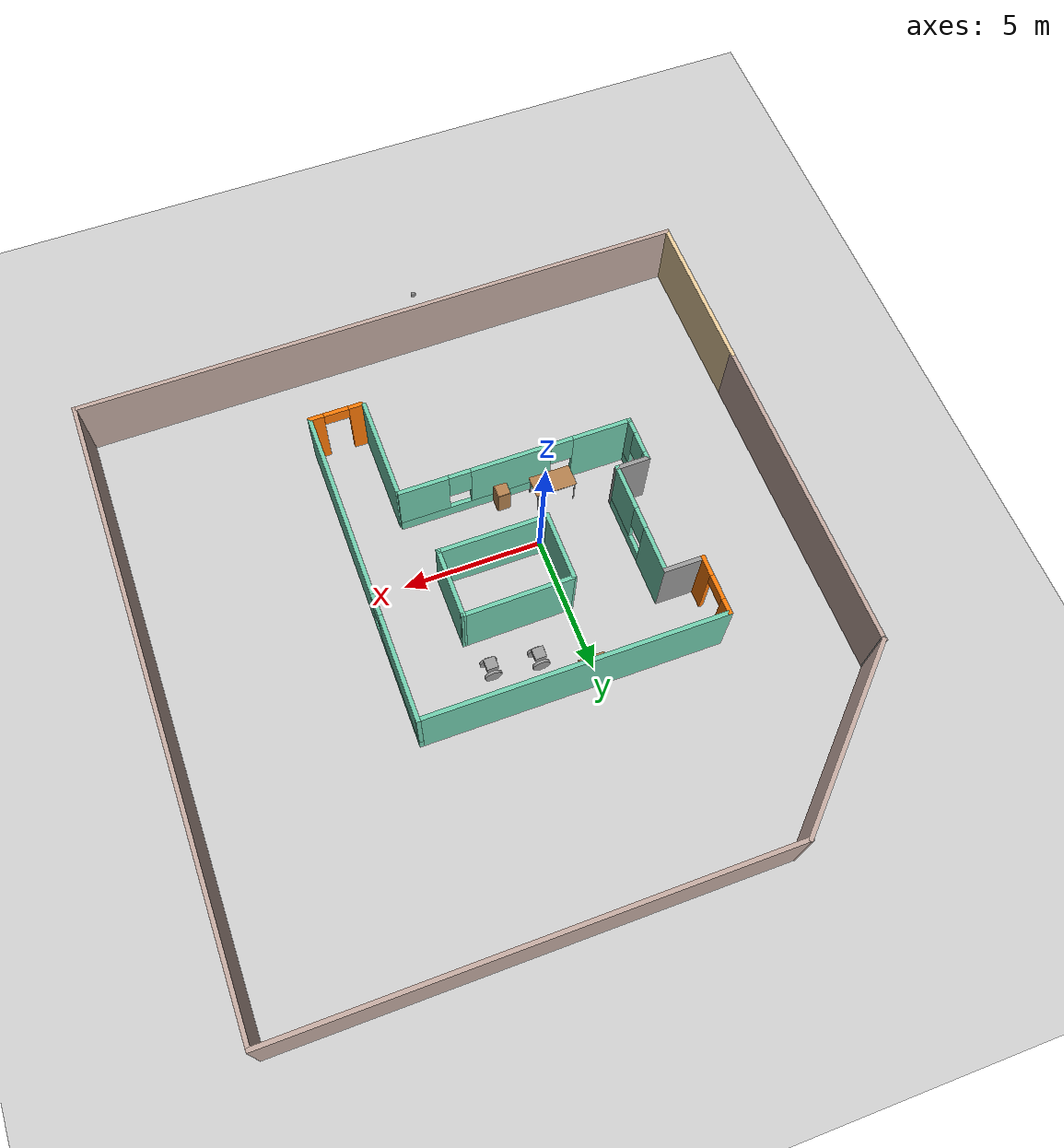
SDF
<sdf version="1.6">
 <world name="default">
  <plugin name="hello" filename="libhello.so"/>
  <magnetic_field>6e-06 2.3e-05 -4.2e-05</magnetic_field>
  <atmosphere type="adiabatic"/>
  <physics name="default_physics" default="0" type="ode">
   <max_step_size>0.001</max_step_size>
   <real_time_factor>1</real_time_factor>
   <real_time_update_rate>1000</real_time_update_rate>
  </physics>
  <scene><ambient>0.4 0.4 0.4 1</ambient><background>0.7 0.7 0.7 1</background><shadows>1</shadows></scene>
  <spherical_coordinates>
   <surface_model>EARTH_WGS84</surface_model>
   <latitude_deg>0</latitude_deg>
   <longitude_deg>0</longitude_deg>
   <elevation>0</elevation>
   <heading_deg>0</heading_deg>
  </spherical_coordinates>
  <model name="ground_plane">
   <static>1</static>
   <link name="link">
    <collision name="collision">
     <geometry><plane><normal>0 0 1</normal><size>100 100</size></plane></geometry>
     <surface>
      <contact><collide_bitmask>65535</collide_bitmask></contact>
      <friction><ode><mu>100</mu><mu2>50</mu2></ode></friction>
     </surface>
    </collision>
    <visual name="visual">
     <cast_shadows>0</cast_shadows>
     <geometry><plane><normal>0 0 1</normal><size>100 100</size></plane></geometry>
     <material>
      <script><uri>file://media/materials/scripts/gazebo.material</uri><name>Gazebo/Grey</name></script>
     </material>
    </visual>
   </link>
  </model>
  <model name="Project1">
   <pose>0.99527 -0.22786 0 0 -0 0</pose>
   <link name="Wall_0">
    <pose>4.375 -5.8 0 0 -0 0</pose>
    <visual name="Wall_0_Visual_0">
     <pose>-0.732181 0 1.25 0 -0 0</pose>
     <geometry><box><size>0.535637 0.15 2.5</size></box></geometry>
     <material>
      <script><uri>file://media/materials/scripts/gazebo.material</uri><name>Gazebo/Grey</name></script>
      <ambient>0.996078 0.47451 0.0196078 1</ambient>
     </material>
     <meta><layer>0</layer></meta>
    </visual>
    <collision name="Wall_0_Collision_0">
     <geometry><box><size>0.535637 0.15 2.5</size></box></geometry>
     <pose>-0.732181 0 1.25 0 -0 0</pose>
    </collision>
    <visual name="Wall_0_Visual_1">
     <pose>0.717819 0 1.25 0 -0 0</pose>
     <geometry><box><size>0.564363 0.15 2.5</size></box></geometry>
     <material>
      <script><uri>file://media/materials/scripts/gazebo.material</uri><name>Gazebo/Grey</name></script>
      <ambient>0.996078 0.47451 0.0196078 1</ambient>
     </material>
     <meta><layer>0</layer></meta>
    </visual>
    <collision name="Wall_0_Collision_1">
     <geometry><box><size>0.564363 0.15 2.5</size></box></geometry>
     <pose>0.717819 0 1.25 0 -0 0</pose>
    </collision>
    <visual name="Wall_0_Visual_2">
     <pose>-0.014363 0 2.25 0 -0 0</pose>
     <geometry><box><size>0.9 0.15 0.5</size></box></geometry>
     <material>
      <script><uri>file://media/materials/scripts/gazebo.material</uri><name>Gazebo/Grey</name></script>
      <ambient>0.996078 0.47451 0.0196078 1</ambient>
     </material>
     <meta><layer>0</layer></meta>
    </visual>
    <collision name="Wall_0_Collision_2">
     <geometry><box><size>0.9 0.15 0.5</size></box></geometry>
     <pose>-0.014363 0 2.25 0 -0 0</pose>
    </collision>
   </link>
   <link name="Wall_1">
    <pose>5.3 0 0 0 -0 1.5708</pose>
    <visual name="Wall_1_Visual_0">
     <pose>-2.31559 0 1.25 0 -0 0</pose>
     <geometry><box><size>7.11883 0.15 2.5</size></box></geometry>
     <material>
      <script><uri>file://media/materials/scripts/gazebo.material</uri><name>Gazebo/Grey</name></script>
      <ambient>0.435294 0.796078 0.67451 1</ambient>
     </material>
     <meta><layer>0</layer></meta>
    </visual>
    <collision name="Wall_1_Collision_0">
     <geometry><box><size>7.11883 0.15 2.5</size></box></geometry>
     <pose>-2.31559 0 1.25 0 -0 0</pose>
    </collision>
    <visual name="Wall_1_Visual_1">
     <pose>3.55941 0 0.25 0 -0 0</pose>
     <geometry><box><size>4.63117 0.15 0.5</size></box></geometry>
     <material>
      <script><uri>file://media/materials/scripts/gazebo.material</uri><name>Gazebo/Grey</name></script>
      <ambient>0.435294 0.796078 0.67451 1</ambient>
     </material>
     <meta><layer>0</layer></meta>
    </visual>
    <collision name="Wall_1_Collision_1">
     <geometry><box><size>4.63117 0.15 0.5</size></box></geometry>
     <pose>3.55941 0 0.25 0 -0 0</pose>
    </collision>
    <visual name="Wall_1_Visual_2">
     <pose>3.95941 0 1.5 0 -0 0</pose>
     <geometry><box><size>3.83117 0.15 2</size></box></geometry>
     <material>
      <script><uri>file://media/materials/scripts/gazebo.material</uri><name>Gazebo/Grey</name></script>
      <ambient>0.435294 0.796078 0.67451 1</ambient>
     </material>
     <meta><layer>0</layer></meta>
    </visual>
    <collision name="Wall_1_Collision_2">
     <geometry><box><size>3.83117 0.15 2</size></box></geometry>
     <pose>3.95941 0 1.5 0 -0 0</pose>
    </collision>
    <visual name="Wall_1_Visual_3">
     <pose>1.64383 0 1.9 0 -0 0</pose>
     <geometry><box><size>0.8 0.15 1.2</size></box></geometry>
     <material>
      <script><uri>file://media/materials/scripts/gazebo.material</uri><name>Gazebo/Grey</name></script>
      <ambient>0.435294 0.796078 0.67451 1</ambient>
     </material>
     <meta><layer>0</layer></meta>
    </visual>
    <collision name="Wall_1_Collision_3">
     <geometry><box><size>0.8 0.15 1.2</size></box></geometry>
     <pose>1.64383 0 1.9 0 -0 0</pose>
    </collision>
   </link>
   <link name="Wall_10">
    <collision name="Wall_10_Collision">
     <geometry><box><size>4 0.15 2.5</size></box></geometry>
     <pose>0 0 1.25 0 -0 0</pose>
    </collision>
    <visual name="Wall_10_Visual">
     <pose>0 0 1.25 0 -0 0</pose>
     <geometry><box><size>4 0.15 2.5</size></box></geometry>
     <material>
      <script><uri>file://media/materials/scripts/gazebo.material</uri><name>Gazebo/Grey</name></script>
      <ambient>0.435294 0.796078 0.67451 1</ambient>
     </material>
     <meta><layer>0</layer></meta>
    </visual>
    <pose>0.864589 0.511617 0 0 -0 0</pose>
   </link>
   <link name="Wall_11">
    <collision name="Wall_11_Collision">
     <geometry><box><size>2.58091 0.15 2.5</size></box></geometry>
     <pose>0 0 1.25 0 -0 0</pose>
    </collision>
    <visual name="Wall_11_Visual">
     <pose>0 0 1.25 0 -0 0</pose>
     <geometry><box><size>2.58091 0.15 2.5</size></box></geometry>
     <material>
      <script><uri>file://media/materials/scripts/gazebo.material</uri><name>Gazebo/Grey</name></script>
      <ambient>0.435294 0.796078 0.67451 1</ambient>
     </material>
     <meta><layer>0</layer></meta>
    </visual>
    <pose>2.78959 1.72707 0 0 -0 1.5708</pose>
   </link>
   <link name="Wall_12">
    <collision name="Wall_12_Collision">
     <geometry><box><size>4.00021 0.15 2.5</size></box></geometry>
     <pose>0 0 1.25 0 -0 0</pose>
    </collision>
    <visual name="Wall_12_Visual">
     <pose>0 0 1.25 0 -0 0</pose>
     <geometry><box><size>4.00021 0.15 2.5</size></box></geometry>
     <material>
      <script><uri>file://media/materials/scripts/gazebo.material</uri><name>Gazebo/Grey</name></script>
      <ambient>0.435294 0.796078 0.67451 1</ambient>
     </material>
     <meta><layer>0</layer></meta>
    </visual>
    <pose>0.864589 2.9223 0 0 0 -3.13109</pose>
   </link>
   <link name="Wall_15">
    <collision name="Wall_15_Collision">
     <geometry><box><size>10.75 0.15 2.5</size></box></geometry>
     <pose>0 0 1.25 0 -0 0</pose>
    </collision>
    <visual name="Wall_15_Visual">
     <pose>0 0 1.25 0 -0 0</pose>
     <geometry><box><size>10.75 0.15 2.5</size></box></geometry>
     <material>
      <script><uri>file://media/materials/scripts/gazebo.material</uri><name>Gazebo/Grey</name></script>
      <ambient>0.435294 0.796078 0.67451 1</ambient>
     </material>
     <meta><layer>0</layer></meta>
    </visual>
    <pose>0 5.8 0 0 -0 3.14159</pose>
   </link>
   <link name="Wall_16">
    <pose>-5.3 4.75 0 0 0 -1.5708</pose>
    <visual name="Wall_16_Visual_0">
     <pose>-0.832408 0 1.25 0 -0 0</pose>
     <geometry><box><size>0.585183 0.15 2.5</size></box></geometry>
     <material>
      <script><uri>file://media/materials/scripts/gazebo.material</uri><name>Gazebo/Grey</name></script>
      <ambient>0.996078 0.47451 0.0196078 1</ambient>
     </material>
     <meta><layer>0</layer></meta>
    </visual>
    <collision name="Wall_16_Collision_0">
     <geometry><box><size>0.585183 0.15 2.5</size></box></geometry>
     <pose>-0.832408 0 1.25 0 -0 0</pose>
    </collision>
    <visual name="Wall_16_Visual_1">
     <pose>0.742592 0 1.25 0 -0 0</pose>
     <geometry><box><size>0.764817 0.15 2.5</size></box></geometry>
     <material>
      <script><uri>file://media/materials/scripts/gazebo.material</uri><name>Gazebo/Grey</name></script>
      <ambient>0.996078 0.47451 0.0196078 1</ambient>
     </material>
     <meta><layer>0</layer></meta>
    </visual>
    <collision name="Wall_16_Collision_1">
     <geometry><box><size>0.764817 0.15 2.5</size></box></geometry>
     <pose>0.742592 0 1.25 0 -0 0</pose>
    </collision>
    <visual name="Wall_16_Visual_2">
     <pose>-0.089817 0 2.25 0 -0 0</pose>
     <geometry><box><size>0.9 0.15 0.5</size></box></geometry>
     <material>
      <script><uri>file://media/materials/scripts/gazebo.material</uri><name>Gazebo/Grey</name></script>
      <ambient>0.996078 0.47451 0.0196078 1</ambient>
     </material>
     <meta><layer>0</layer></meta>
    </visual>
    <collision name="Wall_16_Collision_2">
     <geometry><box><size>0.9 0.15 0.5</size></box></geometry>
     <pose>-0.089817 0 2.25 0 -0 0</pose>
    </collision>
   </link>
   <link name="Wall_17">
    <collision name="Wall_17_Collision">
     <geometry><box><size>1.5 0.15 2.5</size></box></geometry>
     <pose>0 0 1.25 0 -0 0</pose>
    </collision>
    <visual name="Wall_17_Visual">
     <pose>0 0 1.25 0 -0 0</pose>
     <geometry><box><size>1.5 0.15 2.5</size></box></geometry>
     <material>
      <script><uri>file://media/materials/scripts/gazebo.material</uri><name>Gazebo/Grey</name></script>
      <ambient>1 1 1 1</ambient>
     </material>
     <meta><layer>0</layer></meta>
    </visual>
    <pose>-4.625 3.7 0 0 -0 0</pose>
   </link>
   <link name="Wall_18">
    <pose>-3.95 1.65 0 0 0 -1.5708</pose>
    <visual name="Wall_18_Visual_0">
     <pose>-1.25941 0 1.25 0 -0 0</pose>
     <geometry><box><size>1.73117 0.15 2.5</size></box></geometry>
     <material>
      <script><uri>file://media/materials/scripts/gazebo.material</uri><name>Gazebo/Grey</name></script>
      <ambient>0.435294 0.796078 0.67451 1</ambient>
     </material>
     <meta><layer>0</layer></meta>
    </visual>
    <collision name="Wall_18_Collision_0">
     <geometry><box><size>1.73117 0.15 2.5</size></box></geometry>
     <pose>-1.25941 0 1.25 0 -0 0</pose>
    </collision>
    <visual name="Wall_18_Visual_1">
     <pose>0.865587 0 0.25 0 -0 0</pose>
     <geometry><box><size>2.51883 0.15 0.5</size></box></geometry>
     <material>
      <script><uri>file://media/materials/scripts/gazebo.material</uri><name>Gazebo/Grey</name></script>
      <ambient>0.435294 0.796078 0.67451 1</ambient>
     </material>
     <meta><layer>0</layer></meta>
    </visual>
    <collision name="Wall_18_Collision_1">
     <geometry><box><size>2.51883 0.15 0.5</size></box></geometry>
     <pose>0.865587 0 0.25 0 -0 0</pose>
    </collision>
    <visual name="Wall_18_Visual_2">
     <pose>1.26559 0 1.5 0 -0 0</pose>
     <geometry><box><size>1.71883 0.15 2</size></box></geometry>
     <material>
      <script><uri>file://media/materials/scripts/gazebo.material</uri><name>Gazebo/Grey</name></script>
      <ambient>0.435294 0.796078 0.67451 1</ambient>
     </material>
     <meta><layer>0</layer></meta>
    </visual>
    <collision name="Wall_18_Collision_2">
     <geometry><box><size>1.71883 0.15 2</size></box></geometry>
     <pose>1.26559 0 1.5 0 -0 0</pose>
    </collision>
    <visual name="Wall_18_Visual_3">
     <pose>0.006174 0 1.9 0 -0 0</pose>
     <geometry><box><size>0.8 0.15 1.2</size></box></geometry>
     <material>
      <script><uri>file://media/materials/scripts/gazebo.material</uri><name>Gazebo/Grey</name></script>
      <ambient>0.435294 0.796078 0.67451 1</ambient>
     </material>
     <meta><layer>0</layer></meta>
    </visual>
    <collision name="Wall_18_Collision_3">
     <geometry><box><size>0.8 0.15 1.2</size></box></geometry>
     <pose>0.006174 0 1.9 0 -0 0</pose>
    </collision>
   </link>
   <link name="Wall_19">
    <collision name="Wall_19_Collision">
     <geometry><box><size>1.25 0.15 2.5</size></box></geometry>
     <pose>0 0 1.25 0 -0 0</pose>
    </collision>
    <visual name="Wall_19_Visual">
     <pose>0 0 1.25 0 -0 0</pose>
     <geometry><box><size>1.25 0.15 2.5</size></box></geometry>
     <material>
      <script><uri>file://media/materials/scripts/gazebo.material</uri><name>Gazebo/Grey</name></script>
      <ambient>1 1 1 1</ambient>
     </material>
     <meta><layer>0</layer></meta>
    </visual>
    <pose>-4.5 -0.4 0 0 -0 3.14159</pose>
   </link>
   <link name="Wall_20">
    <pose>-5.05 -1.2 0 0 0 -1.5708</pose>
    <visual name="Wall_20_Visual_0">
     <pose>-0.704151 0 1.25 0 -0 0</pose>
     <geometry><box><size>0.341698 0.15 2.5</size></box></geometry>
     <material>
      <script><uri>file://media/materials/scripts/gazebo.material</uri><name>Gazebo/Grey</name></script>
      <ambient>0.435294 0.796078 0.67451 1</ambient>
     </material>
     <meta><layer>0</layer></meta>
    </visual>
    <collision name="Wall_20_Collision_0">
     <geometry><box><size>0.341698 0.15 2.5</size></box></geometry>
     <pose>-0.704151 0 1.25 0 -0 0</pose>
    </collision>
    <visual name="Wall_20_Visual_1">
     <pose>0.170849 0 0.25 0 -0 0</pose>
     <geometry><box><size>1.4083 0.15 0.5</size></box></geometry>
     <material>
      <script><uri>file://media/materials/scripts/gazebo.material</uri><name>Gazebo/Grey</name></script>
      <ambient>0.435294 0.796078 0.67451 1</ambient>
     </material>
     <meta><layer>0</layer></meta>
    </visual>
    <collision name="Wall_20_Collision_1">
     <geometry><box><size>1.4083 0.15 0.5</size></box></geometry>
     <pose>0.170849 0 0.25 0 -0 0</pose>
    </collision>
    <visual name="Wall_20_Visual_2">
     <pose>0.570849 0 1.5 0 -0 0</pose>
     <geometry><box><size>0.608302 0.15 2</size></box></geometry>
     <material>
      <script><uri>file://media/materials/scripts/gazebo.material</uri><name>Gazebo/Grey</name></script>
      <ambient>0.435294 0.796078 0.67451 1</ambient>
     </material>
     <meta><layer>0</layer></meta>
    </visual>
    <collision name="Wall_20_Collision_2">
     <geometry><box><size>0.608302 0.15 2</size></box></geometry>
     <pose>0.570849 0 1.5 0 -0 0</pose>
    </collision>
    <visual name="Wall_20_Visual_3">
     <pose>-0.133302 0 1.9 0 -0 0</pose>
     <geometry><box><size>0.8 0.15 1.2</size></box></geometry>
     <material>
      <script><uri>file://media/materials/scripts/gazebo.material</uri><name>Gazebo/Grey</name></script>
      <ambient>0.435294 0.796078 0.67451 1</ambient>
     </material>
     <meta><layer>0</layer></meta>
    </visual>
    <collision name="Wall_20_Collision_3">
     <geometry><box><size>0.8 0.15 1.2</size></box></geometry>
     <pose>-0.133302 0 1.9 0 -0 0</pose>
    </collision>
   </link>
   <link name="Wall_21">
    <pose>-0.875 -2 0 0 -0 0</pose>
    <visual name="Wall_21_Visual_0">
     <pose>-3.16613 0 1.25 0 -0 0</pose>
     <geometry><box><size>2.16773 0.15 2.5</size></box></geometry>
     <material>
      <script><uri>file://media/materials/scripts/gazebo.material</uri><name>Gazebo/Grey</name></script>
      <ambient>0.435294 0.796078 0.67451 1</ambient>
     </material>
     <meta><layer>0</layer></meta>
    </visual>
    <collision name="Wall_21_Collision_0">
     <geometry><box><size>2.16773 0.15 2.5</size></box></geometry>
     <pose>-3.16613 0 1.25 0 -0 0</pose>
    </collision>
    <visual name="Wall_21_Visual_1">
     <pose>1.08387 0 0.25 0 -0 0</pose>
     <geometry><box><size>6.33227 0.15 0.5</size></box></geometry>
     <material>
      <script><uri>file://media/materials/scripts/gazebo.material</uri><name>Gazebo/Grey</name></script>
      <ambient>0.435294 0.796078 0.67451 1</ambient>
     </material>
     <meta><layer>0</layer></meta>
    </visual>
    <collision name="Wall_21_Collision_1">
     <geometry><box><size>6.33227 0.15 0.5</size></box></geometry>
     <pose>1.08387 0 0.25 0 -0 0</pose>
    </collision>
    <visual name="Wall_21_Visual_2">
     <pose>0.17869 0 1.5 0 -0 0</pose>
     <geometry><box><size>2.92191 0.15 2</size></box></geometry>
     <material>
      <script><uri>file://media/materials/scripts/gazebo.material</uri><name>Gazebo/Grey</name></script>
      <ambient>0.435294 0.796078 0.67451 1</ambient>
     </material>
     <meta><layer>0</layer></meta>
    </visual>
    <collision name="Wall_21_Collision_2">
     <geometry><box><size>2.92191 0.15 2</size></box></geometry>
     <pose>0.17869 0 1.5 0 -0 0</pose>
    </collision>
    <visual name="Wall_21_Visual_3">
     <pose>3.34482 0 1.5 0 -0 0</pose>
     <geometry><box><size>1.81035 0.15 2</size></box></geometry>
     <material>
      <script><uri>file://media/materials/scripts/gazebo.material</uri><name>Gazebo/Grey</name></script>
      <ambient>0.435294 0.796078 0.67451 1</ambient>
     </material>
     <meta><layer>0</layer></meta>
    </visual>
    <collision name="Wall_21_Collision_3">
     <geometry><box><size>1.81035 0.15 2</size></box></geometry>
     <pose>3.34482 0 1.5 0 -0 0</pose>
    </collision>
    <visual name="Wall_21_Visual_4">
     <pose>-1.68227 0 1.9 0 -0 0</pose>
     <geometry><box><size>0.8 0.15 1.2</size></box></geometry>
     <material>
      <script><uri>file://media/materials/scripts/gazebo.material</uri><name>Gazebo/Grey</name></script>
      <ambient>0.435294 0.796078 0.67451 1</ambient>
     </material>
     <meta><layer>0</layer></meta>
    </visual>
    <collision name="Wall_21_Collision_4">
     <geometry><box><size>0.8 0.15 1.2</size></box></geometry>
     <pose>-1.68227 0 1.9 0 -0 0</pose>
    </collision>
    <visual name="Wall_21_Visual_5">
     <pose>2.03965 0 1.9 0 -0 0</pose>
     <geometry><box><size>0.8 0.15 1.2</size></box></geometry>
     <material>
      <script><uri>file://media/materials/scripts/gazebo.material</uri><name>Gazebo/Grey</name></script>
      <ambient>0.435294 0.796078 0.67451 1</ambient>
     </material>
     <meta><layer>0</layer></meta>
    </visual>
    <collision name="Wall_21_Collision_5">
     <geometry><box><size>0.8 0.15 1.2</size></box></geometry>
     <pose>2.03965 0 1.9 0 -0 0</pose>
    </collision>
   </link>
   <link name="Wall_5">
    <collision name="Wall_5_Collision">
     <geometry><box><size>3.75 0.15 2.5</size></box></geometry>
     <pose>0 0 1.25 0 -0 0</pose>
    </collision>
    <visual name="Wall_5_Visual">
     <pose>0 0 1.25 0 -0 0</pose>
     <geometry><box><size>3.75 0.15 2.5</size></box></geometry>
     <material>
      <script><uri>file://media/materials/scripts/gazebo.material</uri><name>Gazebo/Grey</name></script>
      <ambient>0.435294 0.796078 0.67451 1</ambient>
     </material>
     <meta><layer>0</layer></meta>
    </visual>
    <pose>3.34925 -3.91909 0 0 -0 1.5708</pose>
   </link>
   <link name="Wall_9">
    <collision name="Wall_9_Collision">
     <geometry><box><size>2.58091 0.15 2.5</size></box></geometry>
     <pose>0 0 1.25 0 -0 0</pose>
    </collision>
    <visual name="Wall_9_Visual">
     <pose>0 0 1.25 0 -0 0</pose>
     <geometry><box><size>2.58091 0.15 2.5</size></box></geometry>
     <material>
      <script><uri>file://media/materials/scripts/gazebo.material</uri><name>Gazebo/Grey</name></script>
      <ambient>0.435294 0.796078 0.67451 1</ambient>
     </material>
     <meta><layer>0</layer></meta>
    </visual>
    <pose>-1.06041 1.68662 0 0 0 -1.5708</pose>
   </link>
   <static>1</static>
  </model>
  <model name="2wheel">
   <link name="link_1">
    <pose>3.21316 4.16452 0.5 0 -0 0</pose>
    <inertial>
     <mass>1</mass>
     <inertia>
      <ixx>0.166667</ixx>
      <ixy>0</ixy>
      <ixz>0</ixz>
      <iyy>0.166667</iyy>
      <iyz>0</iyz>
      <izz>0.166667</izz>
     </inertia>
    </inertial>
    <visual name="visual">
     <geometry><box><size>0.4 0.4 0.2</size></box></geometry>
     <material>
      <lighting>1</lighting>
      <script><uri>file://media/materials/scripts/gazebo.material</uri><name>Gazebo/Grey</name></script>
      <shader type="pixel"><normal_map>__default__</normal_map></shader>
      <ambient>0.3 0.3 0.3 1</ambient>
      <diffuse>0.7 0.7 0.7 1</diffuse>
      <specular>0.01 0.01 0.01 1</specular>
      <emissive>0 0 0 1</emissive>
     </material>
    </visual>
    <collision name="collision">
     <geometry><box><size>0.4 0.4 0.2</size></box></geometry>
     <surface>
      <friction>
       <ode><mu>1</mu><mu2>1</mu2><fdir1>0 0 0</fdir1><slip1>0</slip1><slip2>0</slip2></ode>
       <torsional>
        <coefficient>1</coefficient>
        <patch_radius>0</patch_radius>
        <surface_radius>0</surface_radius>
        <use_patch_radius>1</use_patch_radius>
        <ode><slip>0</slip></ode>
       </torsional>
      </friction>
      <bounce><restitution_coefficient>0</restitution_coefficient><threshold>1e+06</threshold></bounce>
      <contact>
       <collide_without_contact>0</collide_without_contact>
       <collide_without_contact_bitmask>1</collide_without_contact_bitmask>
       <collide_bitmask>1</collide_bitmask>
       <ode>
        <soft_cfm>0</soft_cfm>
        <soft_erp>0.2</soft_erp>
        <kp>1e+13</kp>
        <kd>1</kd>
        <max_vel>0.01</max_vel>
        <min_depth>0</min_depth>
       </ode>
       <bullet>
        <split_impulse>1</split_impulse>
        <split_impulse_penetration_threshold>-0.01</split_impulse_penetration_threshold>
        <soft_cfm>0</soft_cfm>
        <soft_erp>0.2</soft_erp>
        <kp>1e+13</kp>
        <kd>1</kd>
       </bullet>
      </contact>
     </surface>
    </collision>
   </link>
   <link name="link_2">
    <pose>3.21316 3.9145 0.1 1.5707 -0 0</pose>
    <inertial>
     <mass>1</mass>
     <inertia><ixx>0.145833</ixx><ixy>0</ixy><ixz>0</ixz><iyy>0.145833</iyy><iyz>0</iyz><izz>0.125</izz></inertia>
    </inertial>
    <visual name="visual">
     <geometry><cylinder><radius>0.3</radius><length>0.1</length></cylinder></geometry>
     <material>
      <lighting>1</lighting>
      <script><uri>file://media/materials/scripts/gazebo.material</uri><name>Gazebo/Grey</name></script>
      <shader type="pixel"><normal_map>__default__</normal_map></shader>
      <ambient>0.3 0.3 0.3 1</ambient>
      <diffuse>0.7 0.7 0.7 1</diffuse>
      <specular>0.01 0.01 0.01 1</specular>
      <emissive>0 0 0 1</emissive>
     </material>
    </visual>
    <collision name="collision">
     <geometry><cylinder><radius>0.3</radius><length>0.1</length></cylinder></geometry>
     <surface>
      <friction>
       <ode><mu>1</mu><mu2>1</mu2><fdir1>0 0 0</fdir1><slip1>0</slip1><slip2>0</slip2></ode>
       <torsional>
        <coefficient>1</coefficient>
        <patch_radius>0</patch_radius>
        <surface_radius>0</surface_radius>
        <use_patch_radius>1</use_patch_radius>
        <ode><slip>0</slip></ode>
       </torsional>
      </friction>
      <bounce><restitution_coefficient>0</restitution_coefficient><threshold>1e+06</threshold></bounce>
      <contact>
       <collide_without_contact>0</collide_without_contact>
       <collide_without_contact_bitmask>1</collide_without_contact_bitmask>
       <collide_bitmask>1</collide_bitmask>
       <ode>
        <soft_cfm>0</soft_cfm>
        <soft_erp>0.2</soft_erp>
        <kp>1e+13</kp>
        <kd>1</kd>
        <max_vel>0.01</max_vel>
        <min_depth>0</min_depth>
       </ode>
       <bullet>
        <split_impulse>1</split_impulse>
        <split_impulse_penetration_threshold>-0.01</split_impulse_penetration_threshold>
        <soft_cfm>0</soft_cfm>
        <soft_erp>0.2</soft_erp>
        <kp>1e+13</kp>
        <kd>1</kd>
       </bullet>
      </contact>
     </surface>
    </collision>
   </link>
   <link name="link_2_clone">
    <pose>3.21316 4.41455 0.1 1.5707 -0 0</pose>
    <inertial>
     <mass>1</mass>
     <inertia><ixx>0.145833</ixx><ixy>0</ixy><ixz>0</ixz><iyy>0.145833</iyy><iyz>0</iyz><izz>0.125</izz></inertia>
    </inertial>
    <visual name="visual">
     <geometry><cylinder><radius>0.3</radius><length>0.1</length></cylinder></geometry>
     <material>
      <lighting>1</lighting>
      <script><uri>file://media/materials/scripts/gazebo.material</uri><name>Gazebo/Grey</name></script>
      <shader type="pixel"><normal_map>__default__</normal_map></shader>
      <ambient>0.3 0.3 0.3 1</ambient>
      <diffuse>0.7 0.7 0.7 1</diffuse>
      <specular>0.01 0.01 0.01 1</specular>
      <emissive>0 0 0 1</emissive>
     </material>
    </visual>
    <collision name="collision">
     <geometry><cylinder><radius>0.3</radius><length>0.1</length></cylinder></geometry>
     <surface>
      <friction>
       <ode><mu>1</mu><mu2>1</mu2><fdir1>0 0 0</fdir1><slip1>0</slip1><slip2>0</slip2></ode>
       <torsional>
        <coefficient>1</coefficient>
        <patch_radius>0</patch_radius>
        <surface_radius>0</surface_radius>
        <use_patch_radius>1</use_patch_radius>
        <ode><slip>0</slip></ode>
       </torsional>
      </friction>
      <bounce><restitution_coefficient>0</restitution_coefficient><threshold>1e+06</threshold></bounce>
      <contact>
       <collide_without_contact>0</collide_without_contact>
       <collide_without_contact_bitmask>1</collide_without_contact_bitmask>
       <collide_bitmask>1</collide_bitmask>
       <ode>
        <soft_cfm>0</soft_cfm>
        <soft_erp>0.2</soft_erp>
        <kp>1e+13</kp>
        <kd>1</kd>
        <max_vel>0.01</max_vel>
        <min_depth>0</min_depth>
       </ode>
       <bullet>
        <split_impulse>1</split_impulse>
        <split_impulse_penetration_threshold>-0.01</split_impulse_penetration_threshold>
        <soft_cfm>0</soft_cfm>
        <soft_erp>0.2</soft_erp>
        <kp>1e+13</kp>
        <kd>1</kd>
       </bullet>
      </contact>
     </surface>
    </collision>
   </link>
   <joint name="link_1_JOINT_0" type="revolute">
    <parent>link_1</parent>
    <child>link_2</child>
    <axis>
     <xyz>0 0 1</xyz>
     <use_parent_model_frame>0</use_parent_model_frame>
     <limit>
      <lower>-1.79769e+308</lower>
      <upper>1.79769e+308</upper>
      <effort>-1</effort>
      <velocity>-1</velocity>
     </limit>
     <dynamics>
      <spring_reference>0</spring_reference>
      <spring_stiffness>0</spring_stiffness>
      <damping>0</damping>
     </dynamics>
    </axis>
    <physics>
     <ode><limit><cfm>0</cfm><erp>0.2</erp></limit><suspension><cfm>0</cfm><erp>0.2</erp></suspension></ode>
    </physics>
   </joint>
   <joint name="link_1_JOINT_2" type="revolute">
    <parent>link_1</parent>
    <child>link_2_clone</child>
    <axis>
     <xyz>0 0 1</xyz>
     <use_parent_model_frame>0</use_parent_model_frame>
     <limit>
      <lower>-1.79769e+308</lower>
      <upper>1.79769e+308</upper>
      <effort>-1</effort>
      <velocity>-1</velocity>
     </limit>
     <dynamics>
      <spring_reference>0</spring_reference>
      <spring_stiffness>0</spring_stiffness>
      <damping>0</damping>
     </dynamics>
    </axis>
    <physics>
     <ode><limit><cfm>0</cfm><erp>0.2</erp></limit><suspension><cfm>0</cfm><erp>0.2</erp></suspension></ode>
    </physics>
   </joint>
   <static>0</static>
   <pose>0.07305 -0.203329 0.199986 5e-06 -0 0</pose>
  </model>
  <model name="2wheel_0">
   <link name="link_1">
    <pose>3.21316 4.16452 0.5 0 -0 0</pose>
    <inertial>
     <mass>1</mass>
     <inertia>
      <ixx>0.166667</ixx>
      <ixy>0</ixy>
      <ixz>0</ixz>
      <iyy>0.166667</iyy>
      <iyz>0</iyz>
      <izz>0.166667</izz>
     </inertia>
    </inertial>
    <visual name="visual">
     <geometry><box><size>0.4 0.4 0.2</size></box></geometry>
     <material>
      <lighting>1</lighting>
      <script><uri>file://media/materials/scripts/gazebo.material</uri><name>Gazebo/Grey</name></script>
      <shader type="pixel"><normal_map>__default__</normal_map></shader>
      <ambient>0.3 0.3 0.3 1</ambient>
      <diffuse>0.7 0.7 0.7 1</diffuse>
      <specular>0.01 0.01 0.01 1</specular>
      <emissive>0 0 0 1</emissive>
     </material>
    </visual>
    <collision name="collision">
     <geometry><box><size>0.4 0.4 0.2</size></box></geometry>
     <surface>
      <friction>
       <ode><mu>1</mu><mu2>1</mu2><fdir1>0 0 0</fdir1><slip1>0</slip1><slip2>0</slip2></ode>
       <torsional>
        <coefficient>1</coefficient>
        <patch_radius>0</patch_radius>
        <surface_radius>0</surface_radius>
        <use_patch_radius>1</use_patch_radius>
        <ode><slip>0</slip></ode>
       </torsional>
      </friction>
      <bounce><restitution_coefficient>0</restitution_coefficient><threshold>1e+06</threshold></bounce>
      <contact>
       <collide_without_contact>0</collide_without_contact>
       <collide_without_contact_bitmask>1</collide_without_contact_bitmask>
       <collide_bitmask>1</collide_bitmask>
       <ode>
        <soft_cfm>0</soft_cfm>
        <soft_erp>0.2</soft_erp>
        <kp>1e+13</kp>
        <kd>1</kd>
        <max_vel>0.01</max_vel>
        <min_depth>0</min_depth>
       </ode>
       <bullet>
        <split_impulse>1</split_impulse>
        <split_impulse_penetration_threshold>-0.01</split_impulse_penetration_threshold>
        <soft_cfm>0</soft_cfm>
        <soft_erp>0.2</soft_erp>
        <kp>1e+13</kp>
        <kd>1</kd>
       </bullet>
      </contact>
     </surface>
    </collision>
   </link>
   <link name="link_2">
    <pose>3.21316 3.9145 0.1 1.5707 -0 0</pose>
    <inertial>
     <mass>1</mass>
     <inertia><ixx>0.145833</ixx><ixy>0</ixy><ixz>0</ixz><iyy>0.145833</iyy><iyz>0</iyz><izz>0.125</izz></inertia>
    </inertial>
    <visual name="visual">
     <geometry><cylinder><radius>0.3</radius><length>0.1</length></cylinder></geometry>
     <material>
      <lighting>1</lighting>
      <script><uri>file://media/materials/scripts/gazebo.material</uri><name>Gazebo/Grey</name></script>
      <shader type="pixel"><normal_map>__default__</normal_map></shader>
      <ambient>0.3 0.3 0.3 1</ambient>
      <diffuse>0.7 0.7 0.7 1</diffuse>
      <specular>0.01 0.01 0.01 1</specular>
      <emissive>0 0 0 1</emissive>
     </material>
    </visual>
    <collision name="collision">
     <geometry><cylinder><radius>0.3</radius><length>0.1</length></cylinder></geometry>
     <surface>
      <friction>
       <ode><mu>1</mu><mu2>1</mu2><fdir1>0 0 0</fdir1><slip1>0</slip1><slip2>0</slip2></ode>
       <torsional>
        <coefficient>1</coefficient>
        <patch_radius>0</patch_radius>
        <surface_radius>0</surface_radius>
        <use_patch_radius>1</use_patch_radius>
        <ode><slip>0</slip></ode>
       </torsional>
      </friction>
      <bounce><restitution_coefficient>0</restitution_coefficient><threshold>1e+06</threshold></bounce>
      <contact>
       <collide_without_contact>0</collide_without_contact>
       <collide_without_contact_bitmask>1</collide_without_contact_bitmask>
       <collide_bitmask>1</collide_bitmask>
       <ode>
        <soft_cfm>0</soft_cfm>
        <soft_erp>0.2</soft_erp>
        <kp>1e+13</kp>
        <kd>1</kd>
        <max_vel>0.01</max_vel>
        <min_depth>0</min_depth>
       </ode>
       <bullet>
        <split_impulse>1</split_impulse>
        <split_impulse_penetration_threshold>-0.01</split_impulse_penetration_threshold>
        <soft_cfm>0</soft_cfm>
        <soft_erp>0.2</soft_erp>
        <kp>1e+13</kp>
        <kd>1</kd>
       </bullet>
      </contact>
     </surface>
    </collision>
   </link>
   <link name="link_2_clone">
    <pose>3.21316 4.41455 0.1 1.5707 -0 0</pose>
    <inertial>
     <mass>1</mass>
     <inertia><ixx>0.145833</ixx><ixy>0</ixy><ixz>0</ixz><iyy>0.145833</iyy><iyz>0</iyz><izz>0.125</izz></inertia>
    </inertial>
    <visual name="visual">
     <geometry><cylinder><radius>0.3</radius><length>0.1</length></cylinder></geometry>
     <material>
      <lighting>1</lighting>
      <script><uri>file://media/materials/scripts/gazebo.material</uri><name>Gazebo/Grey</name></script>
      <shader type="pixel"><normal_map>__default__</normal_map></shader>
      <ambient>0.3 0.3 0.3 1</ambient>
      <diffuse>0.7 0.7 0.7 1</diffuse>
      <specular>0.01 0.01 0.01 1</specular>
      <emissive>0 0 0 1</emissive>
     </material>
    </visual>
    <collision name="collision">
     <geometry><cylinder><radius>0.3</radius><length>0.1</length></cylinder></geometry>
     <surface>
      <friction>
       <ode><mu>1</mu><mu2>1</mu2><fdir1>0 0 0</fdir1><slip1>0</slip1><slip2>0</slip2></ode>
       <torsional>
        <coefficient>1</coefficient>
        <patch_radius>0</patch_radius>
        <surface_radius>0</surface_radius>
        <use_patch_radius>1</use_patch_radius>
        <ode><slip>0</slip></ode>
       </torsional>
      </friction>
      <bounce><restitution_coefficient>0</restitution_coefficient><threshold>1e+06</threshold></bounce>
      <contact>
       <collide_without_contact>0</collide_without_contact>
       <collide_without_contact_bitmask>1</collide_without_contact_bitmask>
       <collide_bitmask>1</collide_bitmask>
       <ode>
        <soft_cfm>0</soft_cfm>
        <soft_erp>0.2</soft_erp>
        <kp>1e+13</kp>
        <kd>1</kd>
        <max_vel>0.01</max_vel>
        <min_depth>0</min_depth>
       </ode>
       <bullet>
        <split_impulse>1</split_impulse>
        <split_impulse_penetration_threshold>-0.01</split_impulse_penetration_threshold>
        <soft_cfm>0</soft_cfm>
        <soft_erp>0.2</soft_erp>
        <kp>1e+13</kp>
        <kd>1</kd>
       </bullet>
      </contact>
     </surface>
    </collision>
   </link>
   <joint name="link_1_JOINT_0" type="revolute">
    <parent>link_1</parent>
    <child>link_2</child>
    <axis>
     <xyz>0 0 1</xyz>
     <use_parent_model_frame>0</use_parent_model_frame>
     <limit>
      <lower>-1.79769e+308</lower>
      <upper>1.79769e+308</upper>
      <effort>-1</effort>
      <velocity>-1</velocity>
     </limit>
     <dynamics>
      <spring_reference>0</spring_reference>
      <spring_stiffness>0</spring_stiffness>
      <damping>0</damping>
     </dynamics>
    </axis>
    <physics>
     <ode><limit><cfm>0</cfm><erp>0.2</erp></limit><suspension><cfm>0</cfm><erp>0.2</erp></suspension></ode>
    </physics>
   </joint>
   <joint name="link_1_JOINT_2" type="revolute">
    <parent>link_1</parent>
    <child>link_2_clone</child>
    <axis>
     <xyz>0 0 1</xyz>
     <use_parent_model_frame>0</use_parent_model_frame>
     <limit>
      <lower>-1.79769e+308</lower>
      <upper>1.79769e+308</upper>
      <effort>-1</effort>
      <velocity>-1</velocity>
     </limit>
     <dynamics>
      <spring_reference>0</spring_reference>
      <spring_stiffness>0</spring_stiffness>
      <damping>0</damping>
     </dynamics>
    </axis>
    <physics>
     <ode><limit><cfm>0</cfm><erp>0.2</erp></limit><suspension><cfm>0</cfm><erp>0.2</erp></suspension></ode>
    </physics>
   </joint>
   <static>0</static>
   <pose>-1.55223 -0.007429 0.199986 5e-06 -0 0</pose>
  </model>
  <gravity>0 0 -9.8</gravity>
  <model name="bookshelf">
   <static>1</static>
   <link name="link">
    <inertial><mass>1</mass></inertial>
    <collision name="back">
     <pose>0 0.005 0.6 0 -0 0</pose>
     <geometry><box><size>0.9 0.01 1.2</size></box></geometry>
    </collision>
    <visual name="visual1">
     <pose>0 0.005 0.6 0 -0 0</pose>
     <geometry><box><size>0.9 0.01 1.2</size></box></geometry>
     <material>
      <script><uri>file://media/materials/scripts/gazebo.material</uri><name>Gazebo/Wood</name></script>
     </material>
    </visual>
    <collision name="left_side">
     <pose>0.45 -0.195 0.6 0 -0 0</pose>
     <geometry><box><size>0.02 0.4 1.2</size></box></geometry>
    </collision>
    <visual name="visual2">
     <pose>0.45 -0.195 0.6 0 -0 0</pose>
     <geometry><box><size>0.02 0.4 1.2</size></box></geometry>
     <material>
      <script><uri>file://media/materials/scripts/gazebo.material</uri><name>Gazebo/Wood</name></script>
     </material>
    </visual>
    <collision name="right_side">
     <pose>-0.45 -0.195 0.6 0 -0 0</pose>
     <geometry><box><size>0.02 0.4 1.2</size></box></geometry>
    </collision>
    <visual name="visual3">
     <pose>-0.45 -0.195 0.6 0 -0 0</pose>
     <geometry><box><size>0.02 0.4 1.2</size></box></geometry>
     <material>
      <script><uri>file://media/materials/scripts/gazebo.material</uri><name>Gazebo/Wood</name></script>
     </material>
    </visual>
    <collision name="bottom">
     <pose>0 -0.195 0.03 0 -0 0</pose>
     <geometry><box><size>0.88 0.4 0.06</size></box></geometry>
    </collision>
    <visual name="visual4">
     <pose>0 -0.195 0.03 0 -0 0</pose>
     <geometry><box><size>0.88 0.4 0.06</size></box></geometry>
     <material>
      <script><uri>file://media/materials/scripts/gazebo.material</uri><name>Gazebo/Wood</name></script>
     </material>
    </visual>
    <collision name="top">
     <pose>0 -0.195 1.19 0 -0 0</pose>
     <geometry><box><size>0.88 0.4 0.02</size></box></geometry>
    </collision>
    <visual name="visual5">
     <pose>0 -0.195 1.19 0 -0 0</pose>
     <geometry><box><size>0.88 0.4 0.02</size></box></geometry>
     <material>
      <script><uri>file://media/materials/scripts/gazebo.material</uri><name>Gazebo/Wood</name></script>
     </material>
    </visual>
    <collision name="low_shelf">
     <pose>0 -0.195 0.43 0 -0 0</pose>
     <geometry><box><size>0.88 0.4 0.02</size></box></geometry>
    </collision>
    <visual name="visual6">
     <pose>0 -0.195 0.43 0 -0 0</pose>
     <geometry><box><size>0.88 0.4 0.02</size></box></geometry>
     <material>
      <script><uri>file://media/materials/scripts/gazebo.material</uri><name>Gazebo/Wood</name></script>
     </material>
    </visual>
    <collision name="high_shelf">
     <pose>0 -0.195 0.8 0 -0 0</pose>
     <geometry><box><size>0.88 0.4 0.02</size></box></geometry>
    </collision>
    <visual name="visual7">
     <pose>0 -0.195 0.8 0 -0 0</pose>
     <geometry><box><size>0.88 0.4 0.02</size></box></geometry>
     <material>
      <script><uri>file://media/materials/scripts/gazebo.material</uri><name>Gazebo/Wood</name></script>
     </material>
    </visual>
   </link>
   <pose>0.165659 5.38229 0 0 -0 0</pose>
  </model>
  <model name="table">
   <static>1</static>
   <link name="link">
    <collision name="surface">
     <pose>0 0 1 0 -0 0</pose>
     <geometry><box><size>1.5 0.8 0.03</size></box></geometry>
     <surface><friction><ode><mu>0.6</mu><mu2>0.6</mu2></ode></friction></surface>
    </collision>
    <visual name="visual1">
     <pose>0 0 1 0 -0 0</pose>
     <geometry><box><size>1.5 0.8 0.03</size></box></geometry>
     <material>
      <script><uri>file://media/materials/scripts/gazebo.material</uri><name>Gazebo/Wood</name></script>
     </material>
    </visual>
    <collision name="front_left_leg">
     <pose>0.68 0.38 0.5 0 -0 0</pose>
     <geometry><cylinder><radius>0.02</radius><length>1</length></cylinder></geometry>
    </collision>
    <visual name="front_left_leg">
     <pose>0.68 0.38 0.5 0 -0 0</pose>
     <geometry><cylinder><radius>0.02</radius><length>1</length></cylinder></geometry>
     <material>
      <script><uri>file://media/materials/scripts/gazebo.material</uri><name>Gazebo/Grey</name></script>
     </material>
    </visual>
    <collision name="front_right_leg">
     <pose>0.68 -0.38 0.5 0 -0 0</pose>
     <geometry><cylinder><radius>0.02</radius><length>1</length></cylinder></geometry>
    </collision>
    <visual name="front_right_leg">
     <pose>0.68 -0.38 0.5 0 -0 0</pose>
     <geometry><cylinder><radius>0.02</radius><length>1</length></cylinder></geometry>
     <material>
      <script><uri>file://media/materials/scripts/gazebo.material</uri><name>Gazebo/Grey</name></script>
     </material>
    </visual>
    <collision name="back_right_leg">
     <pose>-0.68 -0.38 0.5 0 -0 0</pose>
     <geometry><cylinder><radius>0.02</radius><length>1</length></cylinder></geometry>
    </collision>
    <visual name="back_right_leg">
     <pose>-0.68 -0.38 0.5 0 -0 0</pose>
     <geometry><cylinder><radius>0.02</radius><length>1</length></cylinder></geometry>
     <material>
      <script><uri>file://media/materials/scripts/gazebo.material</uri><name>Gazebo/Grey</name></script>
     </material>
    </visual>
    <collision name="back_left_leg">
     <pose>-0.68 0.38 0.5 0 -0 0</pose>
     <geometry><cylinder><radius>0.02</radius><length>1</length></cylinder></geometry>
    </collision>
    <visual name="back_left_leg">
     <pose>-0.68 0.38 0.5 0 -0 0</pose>
     <geometry><cylinder><radius>0.02</radius><length>1</length></cylinder></geometry>
     <material>
      <script><uri>file://media/materials/scripts/gazebo.material</uri><name>Gazebo/Grey</name></script>
     </material>
    </visual>
   </link>
   <pose>-1.07315 -1.65696 0 0 -0 0</pose>
  </model>
  <model name="Wall_0">
   <pose>2.6391 1.90357 0 0 -0 0</pose>
   <link name="Wall_10">
    <collision name="Wall_10_Collision">
     <geometry><box><size>7.25 0.15 2.5</size></box></geometry>
     <pose>0 0 1.25 0 -0 0</pose>
    </collision>
    <visual name="Wall_10_Visual">
     <pose>0 0 1.25 0 -0 0</pose>
     <geometry><box><size>7.25 0.15 2.5</size></box></geometry>
     <material>
      <script><uri>file://media/materials/scripts/gazebo.material</uri><name>Gazebo/Grey</name></script>
      <ambient>0.760784 0.662745 0.627451 1</ambient>
     </material>
     <meta><layer>0</layer></meta>
    </visual>
    <pose>-8.65967 8.70967 0 0 -0 0.785398</pose>
   </link>
   <link name="Wall_11">
    <collision name="Wall_11_Collision">
     <geometry><box><size>17.5 0.15 2.5</size></box></geometry>
     <pose>0 0 1.25 0 -0 0</pose>
    </collision>
    <visual name="Wall_11_Visual">
     <pose>0 0 1.25 0 -0 0</pose>
     <geometry><box><size>17.5 0.15 2.5</size></box></geometry>
     <material>
      <script><uri>file://media/materials/scripts/gazebo.material</uri><name>Gazebo/Grey</name></script>
      <ambient>0.760784 0.662745 0.627451 1</ambient>
     </material>
     <meta><layer>0</layer></meta>
    </visual>
    <pose>2.52556 11.2199 0 0 -0 0</pose>
   </link>
   <link name="Wall_12">
    <collision name="Wall_12_Collision">
     <geometry><box><size>22.5 0.15 2.5</size></box></geometry>
     <pose>0 0 1.25 0 -0 0</pose>
    </collision>
    <visual name="Wall_12_Visual">
     <pose>0 0 1.25 0 -0 0</pose>
     <geometry><box><size>22.5 0.15 2.5</size></box></geometry>
     <material>
      <script><uri>file://media/materials/scripts/gazebo.material</uri><name>Gazebo/Grey</name></script>
      <ambient>0.760784 0.662745 0.627451 1</ambient>
     </material>
     <meta><layer>0</layer></meta>
    </visual>
    <pose>11.2006 0.044897 0 0 0 -1.5708</pose>
   </link>
   <link name="Wall_13">
    <collision name="Wall_13_Collision">
     <geometry><box><size>22.5308 0.15 2.5</size></box></geometry>
     <pose>0 0 1.25 0 -0 0</pose>
    </collision>
    <visual name="Wall_13_Visual">
     <pose>0 0 1.25 0 -0 0</pose>
     <geometry><box><size>22.5308 0.15 2.5</size></box></geometry>
     <material>
      <script><uri>file://media/materials/scripts/gazebo.material</uri><name>Gazebo/Grey</name></script>
      <ambient>0.760784 0.662745 0.627451 1</ambient>
     </material>
     <meta><layer>0</layer></meta>
    </visual>
    <pose>0.010333 -11.1903 0 0 0 -3.13621</pose>
   </link>
   <link name="Wall_6">
    <collision name="Wall_6_Collision">
     <geometry><box><size>6 0.15 2.5</size></box></geometry>
     <pose>0 0 1.25 0 -0 0</pose>
    </collision>
    <visual name="Wall_6_Visual">
     <pose>0 0 1.25 0 -0 0</pose>
     <geometry><box><size>6 0.15 2.5</size></box></geometry>
     <material>
      <script><uri>file://media/materials/scripts/gazebo.material</uri><name>Gazebo/Grey</name></script>
      <ambient>0.921569 0.807843 0.615686 1</ambient>
     </material>
     <meta><layer>0</layer></meta>
    </visual>
    <pose>-11.1799 -8.32556 0 0 0 -1.5708</pose>
   </link>
   <link name="Wall_8">
    <collision name="Wall_8_Collision">
     <geometry><box><size>11.75 0.15 2.5</size></box></geometry>
     <pose>0 0 1.25 0 -0 0</pose>
    </collision>
    <visual name="Wall_8_Visual">
     <pose>0 0 1.25 0 -0 0</pose>
     <geometry><box><size>11.75 0.15 2.5</size></box></geometry>
     <material>
      <script><uri>file://media/materials/scripts/gazebo.material</uri><name>Gazebo/Grey</name></script>
      <ambient>0.760784 0.662745 0.627451 1</ambient>
     </material>
     <meta><layer>0</layer></meta>
    </visual>
    <pose>-11.1799 0.399439 0 0 -0 1.5708</pose>
   </link>
   <link name="Wall_9">
    <collision name="Wall_9_Collision">
     <geometry><box><size>0.16 0.15 2.5</size></box></geometry>
     <pose>0 0 1.25 0 -0 0</pose>
    </collision>
    <visual name="Wall_9_Visual">
     <pose>0 0 1.25 0 -0 0</pose>
     <geometry><box><size>0.16 0.15 2.5</size></box></geometry>
     <material>
      <script><uri>file://media/materials/scripts/gazebo.material</uri><name>Gazebo/Grey</name></script>
      <ambient>1 1 1 1</ambient>
     </material>
     <meta><layer>0</layer></meta>
    </visual>
    <pose>-11.1749 6.19944 0 0 -0 0</pose>
   </link>
   <static>1</static>
  </model>
  <model name="cabinet">
   <static>1</static>
   <link name="cabinet_bottom_plate">
    <inertial>
     <pose>0 0 -1 0 -0 0</pose>
     <inertia><ixx>2.05</ixx><ixy>0</ixy><ixz>0</ixz><iyy>2.05</iyy><iyz>0</iyz><izz>2.05</izz></inertia>
     <mass>25</mass>
    </inertial>
    <collision name="cabinet_bottom_plate_geom">
     <pose>0 0 0.01 0 -0 0</pose>
     <geometry><box><size>0.45 0.45 0.02</size></box></geometry>
    </collision>
    <visual name="cabinet_bottom_plate_geom_visual">
     <pose>0 0 0.01 0 -0 0</pose>
     <geometry><box><size>0.45 0.45 0.02</size></box></geometry>
     <material>
      <script><uri>file://media/materials/scripts/gazebo.material</uri><name>Gazebo/Wood</name></script>
     </material>
    </visual>
    <collision name="cabinet_bottom_plate_geom_cabinet_back_plate">
     <pose>0.235 0 0.51 0 -0 0</pose>
     <geometry><box><size>0.02 0.45 1.02</size></box></geometry>
    </collision>
    <visual name="cabinet_bottom_plate_geom_cabinet_back_plate_visual">
     <pose>0.235 0 0.51 0 -0 0</pose>
     <geometry><box><size>0.02 0.45 1.02</size></box></geometry>
     <material>
      <script><uri>file://media/materials/scripts/gazebo.material</uri><name>Gazebo/Wood</name></script>
     </material>
    </visual>
    <collision name="cabinet_bottom_plate_geom_cabinet_left_plate">
     <pose>0 0.235 0.51 0 -0 0</pose>
     <geometry><box><size>0.45 0.02 1.02</size></box></geometry>
    </collision>
    <visual name="cabinet_bottom_plate_geom_cabinet_left_plate_visual">
     <pose>0 0.235 0.51 0 -0 0</pose>
     <geometry><box><size>0.45 0.02 1.02</size></box></geometry>
     <material>
      <script><uri>file://media/materials/scripts/gazebo.material</uri><name>Gazebo/Wood</name></script>
     </material>
    </visual>
    <collision name="cabinet_bottom_plate_geom_cabinet_middle_plate">
     <pose>0 0 0.51 0 -0 0</pose>
     <geometry><box><size>0.45 0.45 0.02</size></box></geometry>
    </collision>
    <visual name="cabinet_bottom_plate_geom_cabinet_middle_plate_visual">
     <pose>0 0 0.51 0 -0 0</pose>
     <geometry><box><size>0.45 0.45 0.02</size></box></geometry>
     <material>
      <script><uri>file://media/materials/scripts/gazebo.material</uri><name>Gazebo/Wood</name></script>
     </material>
    </visual>
    <collision name="cabinet_bottom_plate_geom_cabinet_right_plate">
     <pose>0 -0.235 0.51 0 -0 0</pose>
     <geometry><box><size>0.45 0.02 1.02</size></box></geometry>
    </collision>
    <visual name="cabinet_bottom_plate_geom_cabinet_right_plate_visual">
     <pose>0 -0.235 0.51 0 -0 0</pose>
     <geometry><box><size>0.45 0.02 1.02</size></box></geometry>
     <material>
      <script><uri>file://media/materials/scripts/gazebo.material</uri><name>Gazebo/Wood</name></script>
     </material>
    </visual>
    <collision name="cabinet_bottom_plate_geom_cabinet_top_plate">
     <pose>0 0 1.01 0 -0 0</pose>
     <geometry><box><size>0.45 0.45 0.02</size></box></geometry>
    </collision>
    <visual name="cabinet_bottom_plate_geom_cabinet_top_plate_visual">
     <pose>0 0 1.01 0 -0 0</pose>
     <geometry><box><size>0.45 0.45 0.02</size></box></geometry>
     <material>
      <script><uri>file://media/materials/scripts/gazebo.material</uri><name>Gazebo/Wood</name></script>
     </material>
    </visual>
   </link>
   <pose>0.708254 -1.9349 0 0 -0 0</pose>
  </model>
  <model name="my_ball">
   <link name="link_0">
    <inertial>
     <mass>1</mass>
     <inertia><ixx>0.1</ixx><ixy>0</ixy><ixz>0</ixz><iyy>0.1</iyy><iyz>0</iyz><izz>0.1</izz></inertia>
    </inertial>
    <visual name="visual">
     <geometry><sphere><radius>0.1</radius></sphere></geometry>
     <material>
      <lighting>1</lighting>
      <script><uri>file://media/materials/scripts/gazebo.material</uri><name>Gazebo/Grey</name></script>
      <shader type="pixel"><normal_map>__default__</normal_map></shader>
      <ambient>1 1 1 1</ambient>
      <diffuse>1 1 1 1</diffuse>
      <specular>1 1 1 1</specular>
      <emissive>1 1 1 1</emissive>
     </material>
    </visual>
    <collision name="collision">
     <geometry><sphere><radius>0.1</radius></sphere></geometry>
     <surface>
      <friction>
       <ode><mu>1</mu><mu2>1</mu2><fdir1>0 0 0</fdir1><slip1>0</slip1><slip2>0</slip2></ode>
       <torsional>
        <coefficient>1</coefficient>
        <patch_radius>0</patch_radius>
        <surface_radius>0</surface_radius>
        <use_patch_radius>1</use_patch_radius>
        <ode><slip>0</slip></ode>
       </torsional>
      </friction>
      <bounce><restitution_coefficient>0</restitution_coefficient><threshold>1e+06</threshold></bounce>
      <contact>
       <collide_without_contact>0</collide_without_contact>
       <collide_without_contact_bitmask>1</collide_without_contact_bitmask>
       <collide_bitmask>1</collide_bitmask>
       <ode>
        <soft_cfm>0</soft_cfm>
        <soft_erp>0.2</soft_erp>
        <kp>1e+13</kp>
        <kd>1</kd>
        <max_vel>0.01</max_vel>
        <min_depth>0</min_depth>
       </ode>
       <bullet>
        <split_impulse>1</split_impulse>
        <split_impulse_penetration_threshold>-0.01</split_impulse_penetration_threshold>
        <soft_cfm>0</soft_cfm>
        <soft_erp>0.2</soft_erp>
        <kp>1e+13</kp>
        <kd>1</kd>
       </bullet>
      </contact>
     </surface>
    </collision>
   </link>
   <static>0</static>
   <pose>0.76597 -11.6294 0.1 0 -0 0</pose>
  </model>
  <plugin filename="libcollision_map_creator.so" name="collision_map_creator"/>
 </world>
</sdf>
